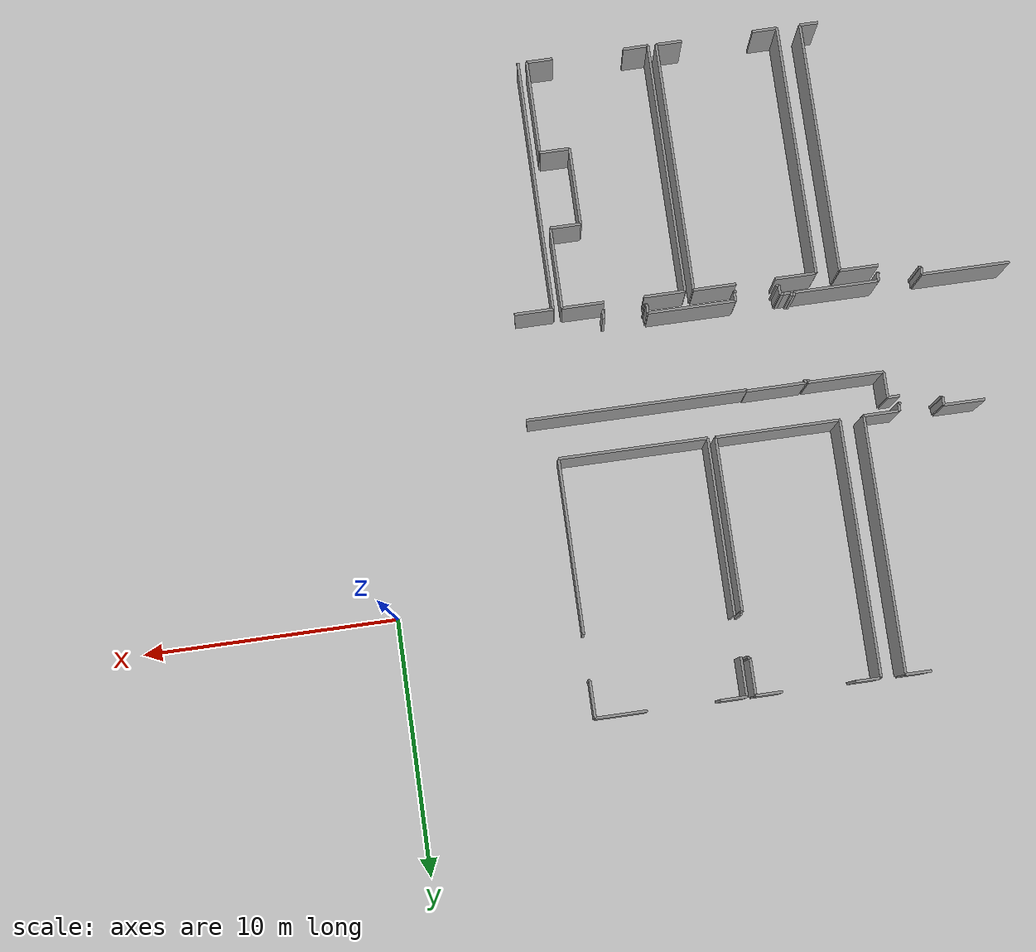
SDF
<sdf version="1.6">
 <world name="default">
  <model name="ground_plane">
   <static>1</static>
   <link name="link">
    <collision name="collision">
     <geometry><plane><normal>0 0 1</normal><size>100 100</size></plane></geometry>
     <surface><friction><ode><mu>100</mu><mu2>50</mu2></ode></friction></surface>
    </collision>
    <visual name="visual">
     <cast_shadows>0</cast_shadows>
     <geometry><plane><normal>0 0 1</normal><size>100 100</size></plane></geometry>
     <material>
      <script><uri>file://media/materials/scripts/gazebo.material</uri><name>Gazebo/Grey</name></script>
     </material>
    </visual>
   </link>
  </model>
  <model name="50055638">
   <static>1</static>
   <link name="Wall_127">
    <collision name="Wall_127_Collision">
     <geometry><box><size>1.51716775018 0.1 2.5</size></box></geometry>
     <pose>0.758583875088 0 1.25 0 0 0</pose>
    </collision>
    <visual name="Wall_127_Visual">
     <pose>0.758583875088 0 1.25 0 0 0</pose>
     <geometry><box><size>1.51716775018 0.1 2.5</size></box></geometry>
     <material>
      <script><uri>file://media/materials/scripts/gazebo.material</uri><name>Gazebo/Grey</name></script>
      <ambient>1 1 1 1</ambient>
     </material>
    </visual>
    <pose>50.2564200332 -31.7436562256 0 0 0 0.0</pose>
   </link>
   <link name="Wall_128">
    <collision name="Wall_128_Collision">
     <geometry><box><size>9.9916750869 0.1 2.5</size></box></geometry>
     <pose>4.99583754345 0 1.25 0 0 0</pose>
    </collision>
    <visual name="Wall_128_Visual">
     <pose>4.99583754345 0 1.25 0 0 0</pose>
     <geometry><box><size>9.9916750869 0.1 2.5</size></box></geometry>
     <material>
      <script><uri>file://media/materials/scripts/gazebo.material</uri><name>Gazebo/Grey</name></script>
      <ambient>1 1 1 1</ambient>
     </material>
    </visual>
    <pose>51.7735877833 -31.7436562256 0 0 0 -1.57079632679</pose>
   </link>
   <link name="Wall_129">
    <collision name="Wall_129_Collision">
     <geometry><box><size>0.705774693535 0.1 2.5</size></box></geometry>
     <pose>0.352887346768 0 1.25 0 0 0</pose>
    </collision>
    <visual name="Wall_129_Visual">
     <pose>0.352887346768 0 1.25 0 0 0</pose>
     <geometry><box><size>0.705774693535 0.1 2.5</size></box></geometry>
     <material>
      <script><uri>file://media/materials/scripts/gazebo.material</uri><name>Gazebo/Grey</name></script>
      <ambient>1 1 1 1</ambient>
     </material>
    </visual>
    <pose>51.7735877833 -41.7353313125 0 0 0 3.14159265359</pose>
   </link>
   <link name="Wall_169">
    <collision name="Wall_169_Collision">
     <geometry><box><size>0.988821738827 0.1 2.5</size></box></geometry>
     <pose>0.494410869413 0 1.25 0 0 0</pose>
    </collision>
    <visual name="Wall_169_Visual">
     <pose>0.494410869413 0 1.25 0 0 0</pose>
     <geometry><box><size>0.988821738827 0.1 2.5</size></box></geometry>
     <material>
      <script><uri>file://media/materials/scripts/gazebo.material</uri><name>Gazebo/Grey</name></script>
      <ambient>1 1 1 1</ambient>
     </material>
    </visual>
    <pose>50.7640490852 -15.9779230931 0 0 0 0.0</pose>
   </link>
   <link name="Wall_170">
    <collision name="Wall_170_Collision">
     <geometry><box><size>10.0052745633 0.1 2.5</size></box></geometry>
     <pose>5.00263728163 0 1.25 0 0 0</pose>
    </collision>
    <visual name="Wall_170_Visual">
     <pose>5.00263728163 0 1.25 0 0 0</pose>
     <geometry><box><size>10.0052745633 0.1 2.5</size></box></geometry>
     <material>
      <script><uri>file://media/materials/scripts/gazebo.material</uri><name>Gazebo/Grey</name></script>
      <ambient>1 1 1 1</ambient>
     </material>
    </visual>
    <pose>51.752870824 -15.9779230931 0 0 0 -1.57079632679</pose>
   </link>
   <link name="Wall_171">
    <collision name="Wall_171_Collision">
     <geometry><box><size>1.39731442116 0.1 2.5</size></box></geometry>
     <pose>0.698657210582 0 1.25 0 0 0</pose>
    </collision>
    <visual name="Wall_171_Visual">
     <pose>0.698657210582 0 1.25 0 0 0</pose>
     <geometry><box><size>1.39731442116 0.1 2.5</size></box></geometry>
     <material>
      <script><uri>file://media/materials/scripts/gazebo.material</uri><name>Gazebo/Grey</name></script>
      <ambient>1 1 1 1</ambient>
     </material>
    </visual>
    <pose>51.752870824 -25.9831976563 0 0 0 3.14159265359</pose>
   </link>
   <link name="Wall_172">
    <collision name="Wall_172_Collision">
     <geometry><box><size>0.296773619558 0.1 2.5</size></box></geometry>
     <pose>0.148386809779 0 1.25 0 0 0</pose>
    </collision>
    <visual name="Wall_172_Visual">
     <pose>0.148386809779 0 1.25 0 0 0</pose>
     <geometry><box><size>0.296773619558 0.1 2.5</size></box></geometry>
     <material>
      <script><uri>file://media/materials/scripts/gazebo.material</uri><name>Gazebo/Grey</name></script>
      <ambient>1 1 1 1</ambient>
     </material>
    </visual>
    <pose>50.3555564029 -25.9831976563 0 0 0 -1.57079632679</pose>
   </link>
   <link name="Wall_173">
    <collision name="Wall_173_Collision">
     <geometry><box><size>0.093416963758 0.1 2.5</size></box></geometry>
     <pose>0.046708481879 0 1.25 0 0 0</pose>
    </collision>
    <visual name="Wall_173_Visual">
     <pose>0.046708481879 0 1.25 0 0 0</pose>
     <geometry><box><size>0.093416963758 0.1 2.5</size></box></geometry>
     <material>
      <script><uri>file://media/materials/scripts/gazebo.material</uri><name>Gazebo/Grey</name></script>
      <ambient>1 1 1 1</ambient>
     </material>
    </visual>
    <pose>50.3555564029 -26.2799712759 0 0 0 3.14159265359</pose>
   </link>
   <link name="Wall_174">
    <collision name="Wall_174_Collision">
     <geometry><box><size>0.0884601452729 0.1 2.5</size></box></geometry>
     <pose>0.0442300726365 0 1.25 0 0 0</pose>
    </collision>
    <visual name="Wall_174_Visual">
     <pose>0.0442300726365 0 1.25 0 0 0</pose>
     <geometry><box><size>0.0884601452729 0.1 2.5</size></box></geometry>
     <material>
      <script><uri>file://media/materials/scripts/gazebo.material</uri><name>Gazebo/Grey</name></script>
      <ambient>1 1 1 1</ambient>
     </material>
    </visual>
    <pose>48.7191708132 -26.2799712759 0 0 0 3.14159265359</pose>
   </link>
   <link name="Wall_175">
    <collision name="Wall_175_Collision">
     <geometry><box><size>0.309356312635 0.1 2.5</size></box></geometry>
     <pose>0.154678156318 0 1.25 0 0 0</pose>
    </collision>
    <visual name="Wall_175_Visual">
     <pose>0.154678156318 0 1.25 0 0 0</pose>
     <geometry><box><size>0.309356312635 0.1 2.5</size></box></geometry>
     <material>
      <script><uri>file://media/materials/scripts/gazebo.material</uri><name>Gazebo/Grey</name></script>
      <ambient>1 1 1 1</ambient>
     </material>
    </visual>
    <pose>48.630710668 -26.2799712759 0 0 0 1.57079632679</pose>
   </link>
   <link name="Wall_176">
    <collision name="Wall_176_Collision">
     <geometry><box><size>1.60499724201 0.1 2.5</size></box></geometry>
     <pose>0.802498621007 0 1.25 0 0 0</pose>
    </collision>
    <visual name="Wall_176_Visual">
     <pose>0.802498621007 0 1.25 0 0 0</pose>
     <geometry><box><size>1.60499724201 0.1 2.5</size></box></geometry>
     <material>
      <script><uri>file://media/materials/scripts/gazebo.material</uri><name>Gazebo/Grey</name></script>
      <ambient>1 1 1 1</ambient>
     </material>
    </visual>
    <pose>48.630710668 -25.9706149632 0 0 0 3.13913779631</pose>
   </link>
   <link name="Wall_202">
    <collision name="Wall_202_Collision">
     <geometry><box><size>0.46708481879 0.1 2.5</size></box></geometry>
     <pose>0.233542409395 0 1.25 0 0 0</pose>
    </collision>
    <visual name="Wall_202_Visual">
     <pose>0.233542409395 0 1.25 0 0 0</pose>
     <geometry><box><size>0.46708481879 0.1 2.5</size></box></geometry>
     <material>
      <script><uri>file://media/materials/scripts/gazebo.material</uri><name>Gazebo/Grey</name></script>
      <ambient>1 1 1 1</ambient>
     </material>
    </visual>
    <pose>50.2574368165 -26.5576802089 0 0 0 0.0</pose>
   </link>
   <link name="Wall_203">
    <collision name="Wall_203_Collision">
     <geometry><box><size>1.00712383785 0.1 2.5</size></box></geometry>
     <pose>0.503561918924 0 1.25 0 0 0</pose>
    </collision>
    <visual name="Wall_203_Visual">
     <pose>0.503561918924 0 1.25 0 0 0</pose>
     <geometry><box><size>1.00712383785 0.1 2.5</size></box></geometry>
     <material>
      <script><uri>file://media/materials/scripts/gazebo.material</uri><name>Gazebo/Grey</name></script>
      <ambient>1 1 1 1</ambient>
     </material>
    </visual>
    <pose>50.7245216352 -26.5576802089 0 0 0 -1.57079632679</pose>
   </link>
   <link name="Wall_204">
    <collision name="Wall_204_Collision">
     <geometry><box><size>2.94600245299 0.1 2.5</size></box></geometry>
     <pose>1.47300122649 0 1.25 0 0 0</pose>
    </collision>
    <visual name="Wall_204_Visual">
     <pose>1.47300122649 0 1.25 0 0 0</pose>
     <geometry><box><size>2.94600245299 0.1 2.5</size></box></geometry>
     <material>
      <script><uri>file://media/materials/scripts/gazebo.material</uri><name>Gazebo/Grey</name></script>
      <ambient>1 1 1 1</ambient>
     </material>
    </visual>
    <pose>50.7245216352 -27.5648040468 0 0 0 0.0</pose>
   </link>
   <link name="Wall_205">
    <collision name="Wall_205_Collision">
     <geometry><box><size>0.100280250891 0.1 2.5</size></box></geometry>
     <pose>0.0501401254456 0 1.25 0 0 0</pose>
    </collision>
    <visual name="Wall_205_Visual">
     <pose>0.0501401254456 0 1.25 0 0 0</pose>
     <geometry><box><size>0.100280250891 0.1 2.5</size></box></geometry>
     <material>
      <script><uri>file://media/materials/scripts/gazebo.material</uri><name>Gazebo/Grey</name></script>
      <ambient>1 1 1 1</ambient>
     </material>
    </visual>
    <pose>53.6705240882 -27.5648040468 0 0 0 -1.57079632679</pose>
   </link>
   <link name="Wall_206">
    <collision name="Wall_206_Collision">
     <geometry><box><size>0.13180053254 0.1 2.5</size></box></geometry>
     <pose>0.0659002662701 0 1.25 0 0 0</pose>
    </collision>
    <visual name="Wall_206_Visual">
     <pose>0.0659002662701 0 1.25 0 0 0</pose>
     <geometry><box><size>0.13180053254 0.1 2.5</size></box></geometry>
     <material>
      <script><uri>file://media/materials/scripts/gazebo.material</uri><name>Gazebo/Grey</name></script>
      <ambient>1 1 1 1</ambient>
     </material>
    </visual>
    <pose>53.6705240882 -31.005471565 0 0 0 -1.57079632679</pose>
   </link>
   <link name="Wall_207">
    <collision name="Wall_207_Collision">
     <geometry><box><size>3.32526261606 0.1 2.5</size></box></geometry>
     <pose>1.66263130803 0 1.25 0 0 0</pose>
    </collision>
    <visual name="Wall_207_Visual">
     <pose>1.66263130803 0 1.25 0 0 0</pose>
     <geometry><box><size>3.32526261606 0.1 2.5</size></box></geometry>
     <material>
      <script><uri>file://media/materials/scripts/gazebo.material</uri><name>Gazebo/Grey</name></script>
      <ambient>1 1 1 1</ambient>
     </material>
    </visual>
    <pose>53.6705240882 -31.1372720976 0 0 0 3.14159265359</pose>
   </link>
   <link name="Wall_208">
    <collision name="Wall_208_Collision">
     <geometry><box><size>0.308466627266 0.1 2.5</size></box></geometry>
     <pose>0.154233313633 0 1.25 0 0 0</pose>
    </collision>
    <visual name="Wall_208_Visual">
     <pose>0.154233313633 0 1.25 0 0 0</pose>
     <geometry><box><size>0.308466627266 0.1 2.5</size></box></geometry>
     <material>
      <script><uri>file://media/materials/scripts/gazebo.material</uri><name>Gazebo/Grey</name></script>
      <ambient>1 1 1 1</ambient>
     </material>
    </visual>
    <pose>50.3452614722 -31.1372720976 0 0 0 -1.57079632679</pose>
   </link>
   <link name="Wall_209">
    <collision name="Wall_209_Collision">
     <geometry><box><size>0.0794361936718 0.1 2.5</size></box></geometry>
     <pose>0.0397180968359 0 1.25 0 0 0</pose>
    </collision>
    <visual name="Wall_209_Visual">
     <pose>0.0397180968359 0 1.25 0 0 0</pose>
     <geometry><box><size>0.0794361936718 0.1 2.5</size></box></geometry>
     <material>
      <script><uri>file://media/materials/scripts/gazebo.material</uri><name>Gazebo/Grey</name></script>
      <ambient>1 1 1 1</ambient>
     </material>
    </visual>
    <pose>50.3452614722 -31.4457387248 0 0 0 3.14159265359</pose>
   </link>
   <link name="Wall_210">
    <collision name="Wall_210_Collision">
     <geometry><box><size>0.0823594455989 0.1 2.5</size></box></geometry>
     <pose>0.0411797227995 0 1.25 0 0 0</pose>
    </collision>
    <visual name="Wall_210_Visual">
     <pose>0.0411797227995 0 1.25 0 0 0</pose>
     <geometry><box><size>0.0823594455989 0.1 2.5</size></box></geometry>
     <material>
      <script><uri>file://media/materials/scripts/gazebo.material</uri><name>Gazebo/Grey</name></script>
      <ambient>1 1 1 1</ambient>
     </material>
    </visual>
    <pose>48.7125617219 -31.4457387248 0 0 0 3.14159265359</pose>
   </link>
   <link name="Wall_211">
    <collision name="Wall_211_Collision">
     <geometry><box><size>0.286478688858 0.1 2.5</size></box></geometry>
     <pose>0.143239344429 0 1.25 0 0 0</pose>
    </collision>
    <visual name="Wall_211_Visual">
     <pose>0.143239344429 0 1.25 0 0 0</pose>
     <geometry><box><size>0.286478688858 0.1 2.5</size></box></geometry>
     <material>
      <script><uri>file://media/materials/scripts/gazebo.material</uri><name>Gazebo/Grey</name></script>
      <ambient>1 1 1 1</ambient>
     </material>
    </visual>
    <pose>48.6302022763 -31.4457387248 0 0 0 1.57079632679</pose>
   </link>
   <link name="Wall_212">
    <collision name="Wall_212_Collision">
     <geometry><box><size>3.43113517498 0.1 2.5</size></box></geometry>
     <pose>1.71556758749 0 1.25 0 0 0</pose>
    </collision>
    <visual name="Wall_212_Visual">
     <pose>1.71556758749 0 1.25 0 0 0</pose>
     <geometry><box><size>3.43113517498 0.1 2.5</size></box></geometry>
     <material>
      <script><uri>file://media/materials/scripts/gazebo.material</uri><name>Gazebo/Grey</name></script>
      <ambient>1 1 1 1</ambient>
     </material>
    </visual>
    <pose>48.6302022763 -31.159260036 0 0 0 3.14159265359</pose>
   </link>
   <link name="Wall_243">
    <collision name="Wall_243_Collision">
     <geometry><box><size>0.297027815378 0.1 2.5</size></box></geometry>
     <pose>0.148513907689 0 1.25 0 0 0</pose>
    </collision>
    <visual name="Wall_243_Visual">
     <pose>0.148513907689 0 1.25 0 0 0</pose>
     <geometry><box><size>0.297027815378 0.1 2.5</size></box></geometry>
     <material>
      <script><uri>file://media/materials/scripts/gazebo.material</uri><name>Gazebo/Grey</name></script>
      <ambient>1 1 1 1</ambient>
     </material>
    </visual>
    <pose>54.0650360005 -31.1395598599 0 0 0 3.14159265359</pose>
   </link>
   <link name="Wall_244">
    <collision name="Wall_244_Collision">
     <geometry><box><size>0.120107524832 0.1 2.5</size></box></geometry>
     <pose>0.0600537624159 0 1.25 0 0 0</pose>
    </collision>
    <visual name="Wall_244_Visual">
     <pose>0.0600537624159 0 1.25 0 0 0</pose>
     <geometry><box><size>0.120107524832 0.1 2.5</size></box></geometry>
     <material>
      <script><uri>file://media/materials/scripts/gazebo.material</uri><name>Gazebo/Grey</name></script>
      <ambient>1 1 1 1</ambient>
     </material>
    </visual>
    <pose>53.7680081851 -31.1395598599 0 0 0 1.57079632679</pose>
   </link>
   <link name="Wall_245">
    <collision name="Wall_245_Collision">
     <geometry><box><size>0.124683049587 0.1 2.5</size></box></geometry>
     <pose>0.0623415247936 0 1.25 0 0 0</pose>
    </collision>
    <visual name="Wall_245_Visual">
     <pose>0.0623415247936 0 1.25 0 0 0</pose>
     <geometry><box><size>0.124683049587 0.1 2.5</size></box></geometry>
     <material>
      <script><uri>file://media/materials/scripts/gazebo.material</uri><name>Gazebo/Grey</name></script>
      <ambient>1 1 1 1</ambient>
     </material>
    </visual>
    <pose>53.7680081851 -27.6856741591 0 0 0 1.57079632679</pose>
   </link>
   <link name="Wall_246">
    <collision name="Wall_246_Collision">
     <geometry><box><size>2.29246500041 0.1 2.5</size></box></geometry>
     <pose>1.14623250021 0 1.25 0 0 0</pose>
    </collision>
    <visual name="Wall_246_Visual">
     <pose>1.14623250021 0 1.25 0 0 0</pose>
     <geometry><box><size>2.29246500041 0.1 2.5</size></box></geometry>
     <material>
      <script><uri>file://media/materials/scripts/gazebo.material</uri><name>Gazebo/Grey</name></script>
      <ambient>1 1 1 1</ambient>
     </material>
    </visual>
    <pose>53.7680081851 -27.5609911095 0 0 0 0.0</pose>
   </link>
   <link name="Wall_247">
    <collision name="Wall_247_Collision">
     <geometry><box><size>0.0397816457908 0.1 2.5</size></box></geometry>
     <pose>0.0198908228954 0 1.25 0 0 0</pose>
    </collision>
    <visual name="Wall_247_Visual">
     <pose>0.0198908228954 0 1.25 0 0 0</pose>
     <geometry><box><size>0.0397816457908 0.1 2.5</size></box></geometry>
     <material>
      <script><uri>file://media/materials/scripts/gazebo.material</uri><name>Gazebo/Grey</name></script>
      <ambient>1 1 1 1</ambient>
     </material>
    </visual>
    <pose>56.0604731855 -27.5609911095 0 0 0 -1.57079632679</pose>
   </link>
   <link name="Wall_248">
    <collision name="Wall_248_Collision">
     <geometry><box><size>8.56258618827 0.1 2.5</size></box></geometry>
     <pose>4.28129309414 0 1.25 0 0 0</pose>
    </collision>
    <visual name="Wall_248_Visual">
     <pose>4.28129309414 0 1.25 0 0 0</pose>
     <geometry><box><size>8.56258618827 0.1 2.5</size></box></geometry>
     <material>
      <script><uri>file://media/materials/scripts/gazebo.material</uri><name>Gazebo/Grey</name></script>
      <ambient>1 1 1 1</ambient>
     </material>
    </visual>
    <pose>56.0604731855 -27.6007727553 0 0 0 0.0</pose>
   </link>
   <link name="Wall_302">
    <collision name="Wall_302_Collision">
     <geometry><box><size>0.329691978215 0.1 2.5</size></box></geometry>
     <pose>0.164845989108 0 1.25 0 0 0</pose>
    </collision>
    <visual name="Wall_302_Visual">
     <pose>0.164845989108 0 1.25 0 0 0</pose>
     <geometry><box><size>0.329691978215 0.1 2.5</size></box></geometry>
     <material>
      <script><uri>file://media/materials/scripts/gazebo.material</uri><name>Gazebo/Grey</name></script>
      <ambient>1 1 1 1</ambient>
     </material>
    </visual>
    <pose>61.0978717455 -31.1318068874 0 0 0 -1.57079632679</pose>
   </link>
   <link name="Wall_303">
    <collision name="Wall_303_Collision">
     <geometry><box><size>0.0770213333842 0.1 2.5</size></box></geometry>
     <pose>0.0385106666921 0 1.25 0 0 0</pose>
    </collision>
    <visual name="Wall_303_Visual">
     <pose>0.0385106666921 0 1.25 0 0 0</pose>
     <geometry><box><size>0.0770213333842 0.1 2.5</size></box></geometry>
     <material>
      <script><uri>file://media/materials/scripts/gazebo.material</uri><name>Gazebo/Grey</name></script>
      <ambient>1 1 1 1</ambient>
     </material>
    </visual>
    <pose>61.0978717455 -31.4614988657 0 0 0 3.14159265359</pose>
   </link>
   <link name="Wall_304">
    <collision name="Wall_304_Collision">
     <geometry><box><size>0.0907479076507 0.1 2.5</size></box></geometry>
     <pose>0.0453739538253 0 1.25 0 0 0</pose>
    </collision>
    <visual name="Wall_304_Visual">
     <pose>0.0453739538253 0 1.25 0 0 0</pose>
     <geometry><box><size>0.0907479076507 0.1 2.5</size></box></geometry>
     <material>
      <script><uri>file://media/materials/scripts/gazebo.material</uri><name>Gazebo/Grey</name></script>
      <ambient>1 1 1 1</ambient>
     </material>
    </visual>
    <pose>59.4663158764 -31.4614988657 0 0 0 3.14159265359</pose>
   </link>
   <link name="Wall_305">
    <collision name="Wall_305_Collision">
     <geometry><box><size>0.341893377563 0.1 2.5</size></box></geometry>
     <pose>0.170946688782 0 1.25 0 0 0</pose>
    </collision>
    <visual name="Wall_305_Visual">
     <pose>0.170946688782 0 1.25 0 0 0</pose>
     <geometry><box><size>0.341893377563 0.1 2.5</size></box></geometry>
     <material>
      <script><uri>file://media/materials/scripts/gazebo.material</uri><name>Gazebo/Grey</name></script>
      <ambient>1 1 1 1</ambient>
     </material>
    </visual>
    <pose>59.3755679688 -31.4614988657 0 0 0 1.57079632679</pose>
   </link>
   <link name="Wall_306">
    <collision name="Wall_306_Collision">
     <geometry><box><size>3.4210944401 0.1 2.5</size></box></geometry>
     <pose>1.71054722005 0 1.25 0 0 0</pose>
    </collision>
    <visual name="Wall_306_Visual">
     <pose>1.71054722005 0 1.25 0 0 0</pose>
     <geometry><box><size>3.4210944401 0.1 2.5</size></box></geometry>
     <material>
      <script><uri>file://media/materials/scripts/gazebo.material</uri><name>Gazebo/Grey</name></script>
      <ambient>1 1 1 1</ambient>
     </material>
    </visual>
    <pose>59.3755679688 -31.1196054881 0 0 0 3.14159265359</pose>
   </link>
   <link name="Wall_307">
    <collision name="Wall_307_Collision">
     <geometry><box><size>0.361085161955 0.1 2.5</size></box></geometry>
     <pose>0.180542580977 0 1.25 0 0 0</pose>
    </collision>
    <visual name="Wall_307_Visual">
     <pose>0.180542580977 0 1.25 0 0 0</pose>
     <geometry><box><size>0.361085161955 0.1 2.5</size></box></geometry>
     <material>
      <script><uri>file://media/materials/scripts/gazebo.material</uri><name>Gazebo/Grey</name></script>
      <ambient>1 1 1 1</ambient>
     </material>
    </visual>
    <pose>55.9544735287 -31.1196054881 0 0 0 -1.57079632679</pose>
   </link>
   <link name="Wall_308">
    <collision name="Wall_308_Collision">
     <geometry><box><size>0.082232347689 0.1 2.5</size></box></geometry>
     <pose>0.0411161738445 0 1.25 0 0 0</pose>
    </collision>
    <visual name="Wall_308_Visual">
     <pose>0.0411161738445 0 1.25 0 0 0</pose>
     <geometry><box><size>0.082232347689 0.1 2.5</size></box></geometry>
     <material>
      <script><uri>file://media/materials/scripts/gazebo.material</uri><name>Gazebo/Grey</name></script>
      <ambient>1 1 1 1</ambient>
     </material>
    </visual>
    <pose>55.9544735287 -31.48069065 0 0 0 3.14159265359</pose>
   </link>
   <link name="Wall_309">
    <collision name="Wall_309_Collision">
     <geometry><box><size>0.116421685445 0.1 2.5</size></box></geometry>
     <pose>0.0582108427227 0 1.25 0 0 0</pose>
    </collision>
    <visual name="Wall_309_Visual">
     <pose>0.0582108427227 0 1.25 0 0 0</pose>
     <geometry><box><size>0.116421685445 0.1 2.5</size></box></geometry>
     <material>
      <script><uri>file://media/materials/scripts/gazebo.material</uri><name>Gazebo/Grey</name></script>
      <ambient>1 1 1 1</ambient>
     </material>
    </visual>
    <pose>54.3206298972 -31.48069065 0 0 0 3.14159265359</pose>
   </link>
   <link name="Wall_310">
    <collision name="Wall_310_Collision">
     <geometry><box><size>0.350663133345 0.1 2.5</size></box></geometry>
     <pose>0.175331566672 0 1.25 0 0 0</pose>
    </collision>
    <visual name="Wall_310_Visual">
     <pose>0.175331566672 0 1.25 0 0 0</pose>
     <geometry><box><size>0.350663133345 0.1 2.5</size></box></geometry>
     <material>
      <script><uri>file://media/materials/scripts/gazebo.material</uri><name>Gazebo/Grey</name></script>
      <ambient>1 1 1 1</ambient>
     </material>
    </visual>
    <pose>54.2042082118 -31.48069065 0 0 0 1.57079632679</pose>
   </link>
   <link name="Wall_311">
    <collision name="Wall_311_Collision">
     <geometry><box><size>0.13949827945 0.1 2.5</size></box></geometry>
     <pose>0.0697491397248 0 1.25 0 0 0</pose>
    </collision>
    <visual name="Wall_311_Visual">
     <pose>0.0697491397248 0 1.25 0 0 0</pose>
     <geometry><box><size>0.13949827945 0.1 2.5</size></box></geometry>
     <material>
      <script><uri>file://media/materials/scripts/gazebo.material</uri><name>Gazebo/Grey</name></script>
      <ambient>1 1 1 1</ambient>
     </material>
    </visual>
    <pose>54.2042082118 -31.1300275167 0 0 0 -3.07320631</pose>
   </link>
   <link name="Wall_312">
    <collision name="Wall_312_Collision">
     <geometry><box><size>9.96752648403 0.1 2.5</size></box></geometry>
     <pose>4.98376324201 0 1.25 0 0 0</pose>
    </collision>
    <visual name="Wall_312_Visual">
     <pose>4.98376324201 0 1.25 0 0 0</pose>
     <geometry><box><size>9.96752648403 0.1 2.5</size></box></geometry>
     <material>
      <script><uri>file://media/materials/scripts/gazebo.material</uri><name>Gazebo/Grey</name></script>
      <ambient>1 1 1 1</ambient>
     </material>
    </visual>
    <pose>52.6908533989 -25.9446869896 0 0 0 1.57079632679</pose>
   </link>
   <link name="Wall_313">
    <collision name="Wall_313_Collision">
     <geometry><box><size>0.988948836736 0.1 2.5</size></box></geometry>
     <pose>0.494474418368 0 1.25 0 0 0</pose>
    </collision>
    <visual name="Wall_313_Visual">
     <pose>0.494474418368 0 1.25 0 0 0</pose>
     <geometry><box><size>0.988948836736 0.1 2.5</size></box></geometry>
     <material>
      <script><uri>file://media/materials/scripts/gazebo.material</uri><name>Gazebo/Grey</name></script>
      <ambient>1 1 1 1</ambient>
     </material>
    </visual>
    <pose>52.6908533989 -15.9771605056 0 0 0 0.0</pose>
   </link>
   <link name="Wall_314">
    <collision name="Wall_314_Collision">
     <geometry><box><size>1.03038275536 0.1 2.5</size></box></geometry>
     <pose>0.515191377678 0 1.25 0 0 0</pose>
    </collision>
    <visual name="Wall_314_Visual">
     <pose>0.515191377678 0 1.25 0 0 0</pose>
     <geometry><box><size>1.03038275536 0.1 2.5</size></box></geometry>
     <material>
      <script><uri>file://media/materials/scripts/gazebo.material</uri><name>Gazebo/Grey</name></script>
      <ambient>1 1 1 1</ambient>
     </material>
    </visual>
    <pose>56.456128979 -15.9771605056 0 0 0 0.0</pose>
   </link>
   <link name="Wall_315">
    <collision name="Wall_315_Collision">
     <geometry><box><size>1.43518959831 0.1 2.5</size></box></geometry>
     <pose>0.717594799154 0 1.25 0 0 0</pose>
    </collision>
    <visual name="Wall_315_Visual">
     <pose>0.717594799154 0 1.25 0 0 0</pose>
     <geometry><box><size>1.43518959831 0.1 2.5</size></box></geometry>
     <material>
      <script><uri>file://media/materials/scripts/gazebo.material</uri><name>Gazebo/Grey</name></script>
      <ambient>1 1 1 1</ambient>
     </material>
    </visual>
    <pose>57.4865117343 -15.9771605056 0 0 0 -1.57079632679</pose>
   </link>
   <link name="Wall_316">
    <collision name="Wall_316_Collision">
     <geometry><box><size>0.0922730825692 0.1 2.5</size></box></geometry>
     <pose>0.0461365412846 0 1.25 0 0 0</pose>
    </collision>
    <visual name="Wall_316_Visual">
     <pose>0.0461365412846 0 1.25 0 0 0</pose>
     <geometry><box><size>0.0922730825692 0.1 2.5</size></box></geometry>
     <material>
      <script><uri>file://media/materials/scripts/gazebo.material</uri><name>Gazebo/Grey</name></script>
      <ambient>1 1 1 1</ambient>
     </material>
    </visual>
    <pose>57.4865117343 -17.4123501039 0 0 0 0.0</pose>
   </link>
   <link name="Wall_317">
    <collision name="Wall_317_Collision">
     <geometry><box><size>0.0927814742087 0.1 2.5</size></box></geometry>
     <pose>0.0463907371043 0 1.25 0 0 0</pose>
    </collision>
    <visual name="Wall_317_Visual">
     <pose>0.0463907371043 0 1.25 0 0 0</pose>
     <geometry><box><size>0.0927814742087 0.1 2.5</size></box></geometry>
     <material>
      <script><uri>file://media/materials/scripts/gazebo.material</uri><name>Gazebo/Grey</name></script>
      <ambient>1 1 1 1</ambient>
     </material>
    </visual>
    <pose>57.5787848169 -17.4123501039 0 0 0 -1.57079632679</pose>
   </link>
   <link name="Wall_318">
    <collision name="Wall_318_Collision">
     <geometry><box><size>0.125572734956 0.1 2.5</size></box></geometry>
     <pose>0.0627863674782 0 1.25 0 0 0</pose>
    </collision>
    <visual name="Wall_318_Visual">
     <pose>0.0627863674782 0 1.25 0 0 0</pose>
     <geometry><box><size>0.125572734956 0.1 2.5</size></box></geometry>
     <material>
      <script><uri>file://media/materials/scripts/gazebo.material</uri><name>Gazebo/Grey</name></script>
      <ambient>1 1 1 1</ambient>
     </material>
    </visual>
    <pose>57.5787848169 -19.0487356935 0 0 0 -1.57079632679</pose>
   </link>
   <link name="Wall_319">
    <collision name="Wall_319_Collision">
     <geometry><box><size>0.0655825214954 0.1 2.5</size></box></geometry>
     <pose>0.0327912607477 0 1.25 0 0 0</pose>
    </collision>
    <visual name="Wall_319_Visual">
     <pose>0.0327912607477 0 1.25 0 0 0</pose>
     <geometry><box><size>0.0655825214954 0.1 2.5</size></box></geometry>
     <material>
      <script><uri>file://media/materials/scripts/gazebo.material</uri><name>Gazebo/Grey</name></script>
      <ambient>1 1 1 1</ambient>
     </material>
    </visual>
    <pose>57.5787848169 -19.1743084285 0 0 0 3.14159265359</pose>
   </link>
   <link name="Wall_320">
    <collision name="Wall_320_Collision">
     <geometry><box><size>6.77063275694 0.1 2.5</size></box></geometry>
     <pose>3.38531637847 0 1.25 0 0 0</pose>
    </collision>
    <visual name="Wall_320_Visual">
     <pose>3.38531637847 0 1.25 0 0 0</pose>
     <geometry><box><size>6.77063275694 0.1 2.5</size></box></geometry>
     <material>
      <script><uri>file://media/materials/scripts/gazebo.material</uri><name>Gazebo/Grey</name></script>
      <ambient>1 1 1 1</ambient>
     </material>
    </visual>
    <pose>57.5132022954 -19.1743084285 0 0 0 -1.57079632679</pose>
   </link>
   <link name="Wall_321">
    <collision name="Wall_321_Collision">
     <geometry><box><size>4.82234890317 0.1 2.5</size></box></geometry>
     <pose>2.41117445159 0 1.25 0 0 0</pose>
    </collision>
    <visual name="Wall_321_Visual">
     <pose>2.41117445159 0 1.25 0 0 0</pose>
     <geometry><box><size>4.82234890317 0.1 2.5</size></box></geometry>
     <material>
      <script><uri>file://media/materials/scripts/gazebo.material</uri><name>Gazebo/Grey</name></script>
      <ambient>1 1 1 1</ambient>
     </material>
    </visual>
    <pose>57.5132022954 -25.9449411854 0 0 0 3.14153994156</pose>
   </link>
   <link name="Wall_322">
    <collision name="Wall_322_Collision">
     <geometry><box><size>6.88667314866 0.1 2.5</size></box></geometry>
     <pose>3.44333657433 0 1.25 0 0 0</pose>
    </collision>
    <visual name="Wall_322_Visual">
     <pose>3.44333657433 0 1.25 0 0 0</pose>
     <geometry><box><size>6.88667314866 0.1 2.5</size></box></geometry>
     <material>
      <script><uri>file://media/materials/scripts/gazebo.material</uri><name>Gazebo/Grey</name></script>
      <ambient>1 1 1 1</ambient>
     </material>
    </visual>
    <pose>57.8189998665 -25.9572696827 0 0 0 1.57079632679</pose>
   </link>
   <link name="Wall_323">
    <collision name="Wall_323_Collision">
     <geometry><box><size>1.52822526834 0.1 2.5</size></box></geometry>
     <pose>0.764112634168 0 1.25 0 0 0</pose>
    </collision>
    <visual name="Wall_323_Visual">
     <pose>0.764112634168 0 1.25 0 0 0</pose>
     <geometry><box><size>1.52822526834 0.1 2.5</size></box></geometry>
     <material>
      <script><uri>file://media/materials/scripts/gazebo.material</uri><name>Gazebo/Grey</name></script>
      <ambient>1 1 1 1</ambient>
     </material>
    </visual>
    <pose>57.8189998665 -17.5079277321 0 0 0 1.57079632679</pose>
   </link>
   <link name="Wall_324">
    <collision name="Wall_324_Collision">
     <geometry><box><size>1.02186719539 0.1 2.5</size></box></geometry>
     <pose>0.510933597697 0 1.25 0 0 0</pose>
    </collision>
    <visual name="Wall_324_Visual">
     <pose>0.510933597697 0 1.25 0 0 0</pose>
     <geometry><box><size>1.02186719539 0.1 2.5</size></box></geometry>
     <material>
      <script><uri>file://media/materials/scripts/gazebo.material</uri><name>Gazebo/Grey</name></script>
      <ambient>1 1 1 1</ambient>
     </material>
    </visual>
    <pose>57.8189998665 -15.9797024638 0 0 0 0.0</pose>
   </link>
   <link name="Wall_325">
    <collision name="Wall_325_Collision">
     <geometry><box><size>1.99048036655 0.1 2.5</size></box></geometry>
     <pose>0.995240183275 0 1.25 0 0 0</pose>
    </collision>
    <visual name="Wall_325_Visual">
     <pose>0.995240183275 0 1.25 0 0 0</pose>
     <geometry><box><size>1.99048036655 0.1 2.5</size></box></geometry>
     <material>
      <script><uri>file://media/materials/scripts/gazebo.material</uri><name>Gazebo/Grey</name></script>
      <ambient>1 1 1 1</ambient>
     </material>
    </visual>
    <pose>61.6163041199 -15.9797024638 0 0 0 0.0</pose>
   </link>
   <link name="Wall_326">
    <collision name="Wall_326_Collision">
     <geometry><box><size>1.42947019236 0.1 2.5</size></box></geometry>
     <pose>0.714735096181 0 1.25 0 0 0</pose>
    </collision>
    <visual name="Wall_326_Visual">
     <pose>0.714735096181 0 1.25 0 0 0</pose>
     <geometry><box><size>1.42947019236 0.1 2.5</size></box></geometry>
     <material>
      <script><uri>file://media/materials/scripts/gazebo.material</uri><name>Gazebo/Grey</name></script>
      <ambient>1 1 1 1</ambient>
     </material>
    </visual>
    <pose>63.6067844864 -15.9797024638 0 0 0 -1.57079632679</pose>
   </link>
   <link name="Wall_327">
    <collision name="Wall_327_Collision">
     <geometry><box><size>0.0659638152251 0.1 2.5</size></box></geometry>
     <pose>0.0329819076125 0 1.25 0 0 0</pose>
    </collision>
    <visual name="Wall_327_Visual">
     <pose>0.0329819076125 0 1.25 0 0 0</pose>
     <geometry><box><size>0.0659638152251 0.1 2.5</size></box></geometry>
     <material>
      <script><uri>file://media/materials/scripts/gazebo.material</uri><name>Gazebo/Grey</name></script>
      <ambient>1 1 1 1</ambient>
     </material>
    </visual>
    <pose>63.6067844864 -17.4091726562 0 0 0 0.0</pose>
   </link>
   <link name="Wall_331">
    <collision name="Wall_331_Collision">
     <geometry><box><size>6.78880775806 0.1 2.5</size></box></geometry>
     <pose>3.39440387903 0 1.25 0 0 0</pose>
    </collision>
    <visual name="Wall_331_Visual">
     <pose>3.39440387903 0 1.25 0 0 0</pose>
     <geometry><box><size>6.78880775806 0.1 2.5</size></box></geometry>
     <material>
      <script><uri>file://media/materials/scripts/gazebo.material</uri><name>Gazebo/Grey</name></script>
      <ambient>1 1 1 1</ambient>
     </material>
    </visual>
    <pose>63.5983960244 -19.1724019598 0 0 0 -1.57079632679</pose>
   </link>
   <link name="Wall_332">
    <collision name="Wall_332_Collision">
     <geometry><box><size>5.77939750087 0.1 2.5</size></box></geometry>
     <pose>2.88969875043 0 1.25 0 0 0</pose>
    </collision>
    <visual name="Wall_332_Visual">
     <pose>2.88969875043 0 1.25 0 0 0</pose>
     <geometry><box><size>5.77939750087 0.1 2.5</size></box></geometry>
     <material>
      <script><uri>file://media/materials/scripts/gazebo.material</uri><name>Gazebo/Grey</name></script>
      <ambient>1 1 1 1</ambient>
     </material>
    </visual>
    <pose>63.5983960244 -25.9612097179 0 0 0 3.14091091548</pose>
   </link>
   <link name="Wall_391">
    <collision name="Wall_391_Collision">
     <geometry><box><size>9.96574711329 0.1 2.5</size></box></geometry>
     <pose>4.98287355664 0 1.25 0 0 0</pose>
    </collision>
    <visual name="Wall_391_Visual">
     <pose>4.98287355664 0 1.25 0 0 0</pose>
     <geometry><box><size>9.96574711329 0.1 2.5</size></box></geometry>
     <material>
      <script><uri>file://media/materials/scripts/gazebo.material</uri><name>Gazebo/Grey</name></script>
      <ambient>1 1 1 1</ambient>
     </material>
    </visual>
    <pose>52.6941579446 -41.7371106832 0 0 0 1.57079632679</pose>
   </link>
   <link name="Wall_392">
    <collision name="Wall_392_Collision">
     <geometry><box><size>1.59838331459 0.1 2.5</size></box></geometry>
     <pose>0.799191657293 0 1.25 0 0 0</pose>
    </collision>
    <visual name="Wall_392_Visual">
     <pose>0.799191657293 0 1.25 0 0 0</pose>
     <geometry><box><size>1.59838331459 0.1 2.5</size></box></geometry>
     <material>
      <script><uri>file://media/materials/scripts/gazebo.material</uri><name>Gazebo/Grey</name></script>
      <ambient>1 1 1 1</ambient>
     </material>
    </visual>
    <pose>52.6941579446 -31.7713635699 0 0 0 0.0</pose>
   </link>
   <link name="Wall_393">
    <collision name="Wall_393_Collision">
     <geometry><box><size>1.66358454235 0.1 2.5</size></box></geometry>
     <pose>0.831792271176 0 1.25 0 0 0</pose>
    </collision>
    <visual name="Wall_393_Visual">
     <pose>0.831792271176 0 1.25 0 0 0</pose>
     <geometry><box><size>1.66358454235 0.1 2.5</size></box></geometry>
     <material>
      <script><uri>file://media/materials/scripts/gazebo.material</uri><name>Gazebo/Grey</name></script>
      <ambient>1 1 1 1</ambient>
     </material>
    </visual>
    <pose>55.8342389059 -31.7713635699 0 0 0 0.0</pose>
   </link>
   <link name="Wall_394">
    <collision name="Wall_394_Collision">
     <geometry><box><size>9.9568502596 0.1 2.5</size></box></geometry>
     <pose>4.9784251298 0 1.25 0 0 0</pose>
    </collision>
    <visual name="Wall_394_Visual">
     <pose>4.9784251298 0 1.25 0 0 0</pose>
     <geometry><box><size>9.9568502596 0.1 2.5</size></box></geometry>
     <material>
      <script><uri>file://media/materials/scripts/gazebo.material</uri><name>Gazebo/Grey</name></script>
      <ambient>1 1 1 1</ambient>
     </material>
    </visual>
    <pose>57.4978234483 -31.7713635699 0 0 0 -1.57079632679</pose>
   </link>
   <link name="Wall_395">
    <collision name="Wall_395_Collision">
     <geometry><box><size>1.01055548142 0.1 2.5</size></box></geometry>
     <pose>0.505277740708 0 1.25 0 0 0</pose>
    </collision>
    <visual name="Wall_395_Visual">
     <pose>0.505277740708 0 1.25 0 0 0</pose>
     <geometry><box><size>1.01055548142 0.1 2.5</size></box></geometry>
     <material>
      <script><uri>file://media/materials/scripts/gazebo.material</uri><name>Gazebo/Grey</name></script>
      <ambient>1 1 1 1</ambient>
     </material>
    </visual>
    <pose>57.4978234483 -41.7282138295 0 0 0 3.14159265359</pose>
   </link>
   <link name="Wall_396">
    <collision name="Wall_396_Collision">
     <geometry><box><size>0.975008658932 0.1 2.5</size></box></geometry>
     <pose>0.487504329466 0 1.25 0 0 0</pose>
    </collision>
    <visual name="Wall_396_Visual">
     <pose>0.487504329466 0 1.25 0 0 0</pose>
     <geometry><box><size>0.975008658932 0.1 2.5</size></box></geometry>
     <material>
      <script><uri>file://media/materials/scripts/gazebo.material</uri><name>Gazebo/Grey</name></script>
      <ambient>1 1 1 1</ambient>
     </material>
    </visual>
    <pose>53.6691260112 -41.7282138295 0 0 0 -3.13246762985</pose>
   </link>
   <link name="Wall_397">
    <collision name="Wall_397_Collision">
     <geometry><box><size>9.96193417599 0.1 2.5</size></box></geometry>
     <pose>4.980967088 0 1.25 0 0 0</pose>
    </collision>
    <visual name="Wall_397_Visual">
     <pose>4.980967088 0 1.25 0 0 0</pose>
     <geometry><box><size>9.96193417599 0.1 2.5</size></box></geometry>
     <material>
      <script><uri>file://media/materials/scripts/gazebo.material</uri><name>Gazebo/Grey</name></script>
      <ambient>1 1 1 1</ambient>
     </material>
    </visual>
    <pose>57.8276425244 -41.731772571 0 0 0 1.57079632679</pose>
   </link>
   <link name="Wall_398">
    <collision name="Wall_398_Collision">
     <geometry><box><size>1.61592282615 0.1 2.5</size></box></geometry>
     <pose>0.807961413075 0 1.25 0 0 0</pose>
    </collision>
    <visual name="Wall_398_Visual">
     <pose>0.807961413075 0 1.25 0 0 0</pose>
     <geometry><box><size>1.61592282615 0.1 2.5</size></box></geometry>
     <material>
      <script><uri>file://media/materials/scripts/gazebo.material</uri><name>Gazebo/Grey</name></script>
      <ambient>1 1 1 1</ambient>
     </material>
    </visual>
    <pose>57.8276425244 -31.769838395 0 0 0 0.0</pose>
   </link>
   <link name="Wall_399">
    <collision name="Wall_399_Collision">
     <geometry><box><size>1.64274048513 0.1 2.5</size></box></geometry>
     <pose>0.821370242566 0 1.25 0 0 0</pose>
    </collision>
    <visual name="Wall_399_Visual">
     <pose>0.821370242566 0 1.25 0 0 0</pose>
     <geometry><box><size>1.64274048513 0.1 2.5</size></box></geometry>
     <material>
      <script><uri>file://media/materials/scripts/gazebo.material</uri><name>Gazebo/Grey</name></script>
      <ambient>1 1 1 1</ambient>
     </material>
    </visual>
    <pose>61.0058528587 -31.769838395 0 0 0 0.0</pose>
   </link>
   <link name="Wall_400">
    <collision name="Wall_400_Collision">
     <geometry><box><size>3.20579058077 0.1 2.5</size></box></geometry>
     <pose>1.60289529039 0 1.25 0 0 0</pose>
    </collision>
    <visual name="Wall_400_Visual">
     <pose>1.60289529039 0 1.25 0 0 0</pose>
     <geometry><box><size>3.20579058077 0.1 2.5</size></box></geometry>
     <material>
      <script><uri>file://media/materials/scripts/gazebo.material</uri><name>Gazebo/Grey</name></script>
      <ambient>1 1 1 1</ambient>
     </material>
    </visual>
    <pose>62.6485933439 -31.769838395 0 0 0 -1.57079632679</pose>
   </link>
   <link name="Wall_401">
    <collision name="Wall_401_Collision">
     <geometry><box><size>1.17908730991 0.1 2.5</size></box></geometry>
     <pose>0.589543654955 0 1.25 0 0 0</pose>
    </collision>
    <visual name="Wall_401_Visual">
     <pose>0.589543654955 0 1.25 0 0 0</pose>
     <geometry><box><size>1.17908730991 0.1 2.5</size></box></geometry>
     <material>
      <script><uri>file://media/materials/scripts/gazebo.material</uri><name>Gazebo/Grey</name></script>
      <ambient>1 1 1 1</ambient>
     </material>
    </visual>
    <pose>62.6485933439 -34.9756289758 0 0 0 3.14159265359</pose>
   </link>
   <link name="Wall_402">
    <collision name="Wall_402_Collision">
     <geometry><box><size>3.04933305372 0.1 2.5</size></box></geometry>
     <pose>1.52466652686 0 1.25 0 0 0</pose>
    </collision>
    <visual name="Wall_402_Visual">
     <pose>1.52466652686 0 1.25 0 0 0</pose>
     <geometry><box><size>3.04933305372 0.1 2.5</size></box></geometry>
     <material>
      <script><uri>file://media/materials/scripts/gazebo.material</uri><name>Gazebo/Grey</name></script>
      <ambient>1 1 1 1</ambient>
     </material>
    </visual>
    <pose>61.469506034 -34.9756289758 0 0 0 -1.57079632679</pose>
   </link>
   <link name="Wall_403">
    <collision name="Wall_403_Collision">
     <geometry><box><size>1.17413049142 0.1 2.5</size></box></geometry>
     <pose>0.587065245712 0 1.25 0 0 0</pose>
    </collision>
    <visual name="Wall_403_Visual">
     <pose>0.587065245712 0 1.25 0 0 0</pose>
     <geometry><box><size>1.17413049142 0.1 2.5</size></box></geometry>
     <material>
      <script><uri>file://media/materials/scripts/gazebo.material</uri><name>Gazebo/Grey</name></script>
      <ambient>1 1 1 1</ambient>
     </material>
    </visual>
    <pose>61.469506034 -38.0249620295 0 0 0 0.0</pose>
   </link>
   <link name="Wall_404">
    <collision name="Wall_404_Collision">
     <geometry><box><size>3.69435494633 0.1 2.5</size></box></geometry>
     <pose>1.84717747317 0 1.25 0 0 0</pose>
    </collision>
    <visual name="Wall_404_Visual">
     <pose>1.84717747317 0 1.25 0 0 0</pose>
     <geometry><box><size>3.69435494633 0.1 2.5</size></box></geometry>
     <material>
      <script><uri>file://media/materials/scripts/gazebo.material</uri><name>Gazebo/Grey</name></script>
      <ambient>1 1 1 1</ambient>
     </material>
    </visual>
    <pose>62.6436365254 -38.0249620295 0 0 0 -1.57079632679</pose>
   </link>
   <link name="Wall_405">
    <collision name="Wall_405_Collision">
     <geometry><box><size>1.01614778945 0.1 2.5</size></box></geometry>
     <pose>0.508073894725 0 1.25 0 0 0</pose>
    </collision>
    <visual name="Wall_405_Visual">
     <pose>0.508073894725 0 1.25 0 0 0</pose>
     <geometry><box><size>1.01614778945 0.1 2.5</size></box></geometry>
     <material>
      <script><uri>file://media/materials/scripts/gazebo.material</uri><name>Gazebo/Grey</name></script>
      <ambient>1 1 1 1</ambient>
     </material>
    </visual>
    <pose>62.6436365254 -41.7193169758 0 0 0 3.14159265359</pose>
   </link>
   <link name="Wall_406">
    <collision name="Wall_406_Collision">
     <geometry><box><size>0.98902727138 0.1 2.5</size></box></geometry>
     <pose>0.49451363569 0 1.25 0 0 0</pose>
    </collision>
    <visual name="Wall_406_Visual">
     <pose>0.49451363569 0 1.25 0 0 0</pose>
     <geometry><box><size>0.98902727138 0.1 2.5</size></box></geometry>
     <material>
      <script><uri>file://media/materials/scripts/gazebo.material</uri><name>Gazebo/Grey</name></script>
      <ambient>1 1 1 1</ambient>
     </material>
    </visual>
    <pose>58.8165913612 -41.7193169758 0 0 0 -3.12899853733</pose>
   </link>
   <link name="Wall_407">
    <collision name="Wall_407_Collision">
     <geometry><box><size>9.95659606378 0.1 2.5</size></box></geometry>
     <pose>4.97829803189 0 1.25 0 0 0</pose>
    </collision>
    <visual name="Wall_407_Visual">
     <pose>4.97829803189 0 1.25 0 0 0</pose>
     <geometry><box><size>9.95659606378 0.1 2.5</size></box></geometry>
     <material>
      <script><uri>file://media/materials/scripts/gazebo.material</uri><name>Gazebo/Grey</name></script>
      <ambient>1 1 1 1</ambient>
     </material>
    </visual>
    <pose>62.9935370713 -41.7312641794 0 0 0 1.57079632679</pose>
   </link>
   <link name="Wall_408">
    <collision name="Wall_408_Collision">
     <geometry><box><size>1.51653226063 0.1 2.5</size></box></geometry>
     <pose>0.758266130313 0 1.25 0 0 0</pose>
    </collision>
    <visual name="Wall_408_Visual">
     <pose>0.758266130313 0 1.25 0 0 0</pose>
     <geometry><box><size>1.51653226063 0.1 2.5</size></box></geometry>
     <material>
      <script><uri>file://media/materials/scripts/gazebo.material</uri><name>Gazebo/Grey</name></script>
      <ambient>1 1 1 1</ambient>
     </material>
    </visual>
    <pose>62.9935370713 -31.7746681156 0 0 0 0.0</pose>
   </link>
   <pose>-70.65 20.8744774687 0 0 0 0</pose>
  </model>
 </world>
</sdf>
